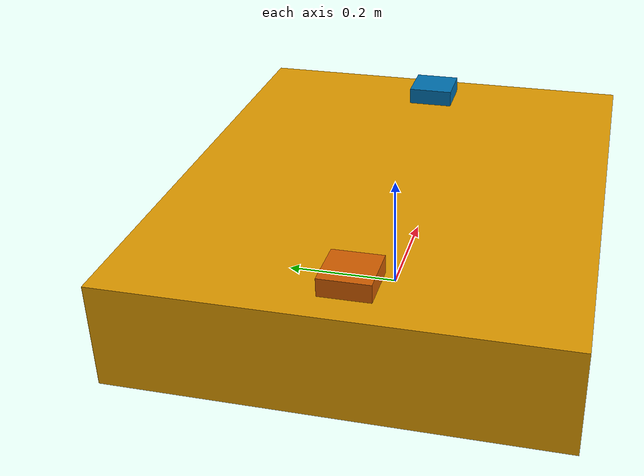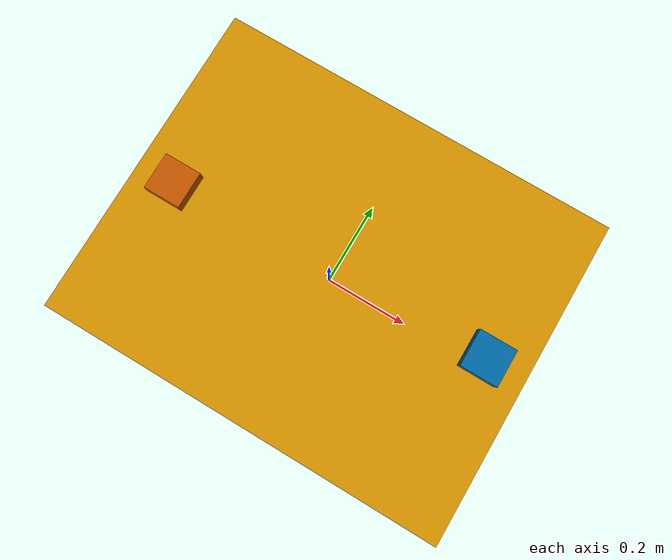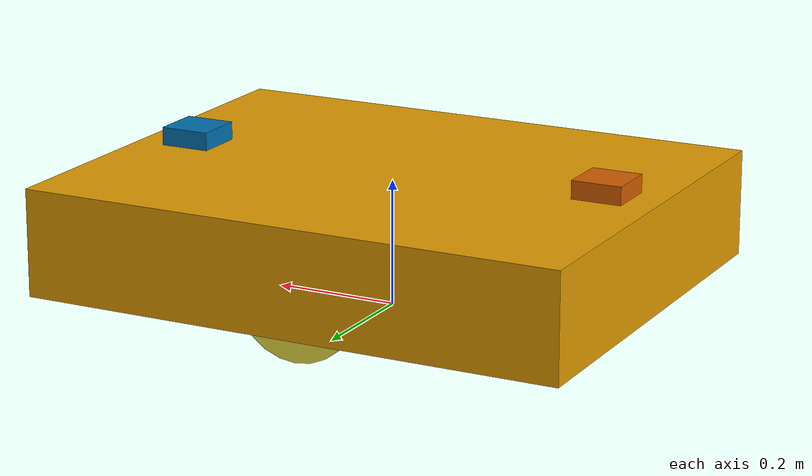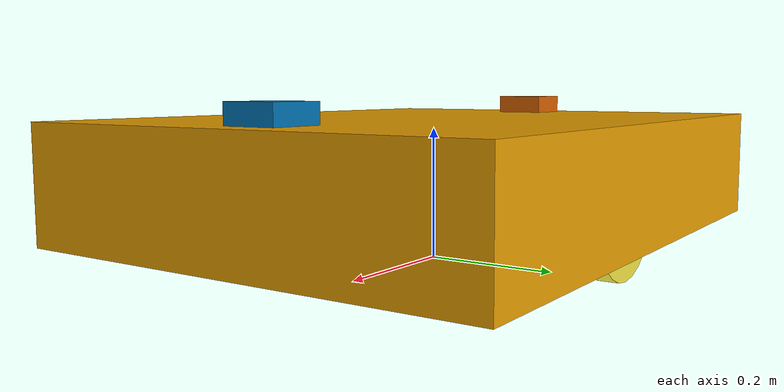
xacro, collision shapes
<?xml version="1.0" ?>
<robot name="midi" xmlns:xacro="http://ros.org/wiki/xacro">
  <xacro:include filename="$(find midi_description)/ros2_control/midi_hardware_interface.xacro"/>

<!-- AGV Base -->

<xacro:midi_ros2_control
    name="MidiSystemHardware" prefix="" use_mock_hardware="false" />

<link name="base_link">
    <visual>
      <origin xyz="0 0 0.100" rpy="0 0 1.5758"/>
      <geometry>
        <mesh filename="package://midi_description/mesh/agv_base_conveyor.stl" scale="0.001 0.001 0.001"/>
      </geometry>
    </visual>

    <collision>
      <origin xyz="0 0 0.132501" rpy="0 0 0"/>
      <geometry>
        <box size="0.877615 0.701947 0.17"/>
      </geometry>
    </collision>

    <inertial>
      <origin xyz="0 0 0.1562185" rpy="0 0 0"/>
      <mass value="61"/>
      <inertia ixx="2.745" ixy="0" ixz="0"
               iyy="4.1556" iyz="0"
               izz="6.42" />
    </inertial>
  </link>

<link name="imu_link"/>

  <joint name="imu_joint" type="fixed">
    <parent link="base_link"/>
    <child link="imu_link" />
    <origin xyz="0 0 0" rpy="0 0 0"/>
  </joint>

<!-- Wheels -->

  <!-- Main -->
    <joint name="right_wheel_joint" type="continuous">
    <parent link="base_link"/>
    <child link="right_wheel_link"/>
    <origin xyz="0 -0.296 0.1" rpy="-1.570796 0 0"/>
    <axis xyz="0 0 1"/>
    <dynamics damping="1" friction="0"/>
    <limit effort="2" velocity="1.0"/>
    </joint>

<link name="right_wheel_link">
    <visual>
      <origin xyz="0 0 0" rpy="0 0 0"/>
      <geometry>
        <cylinder length="0.03" radius="0.1"/>
      </geometry>
    </visual>

    <collision>
      <origin xyz="0 0 0" rpy="0 0 0"/>
      <geometry>
        <cylinder length="0.03" radius="0.1"/>
      </geometry>
    </collision>

    <inertial>
      <origin xyz="0 0 0" rpy="0 0 0"/>
      <mass value="1"/>
      <inertia ixx="0.0025750" ixy="0" ixz="0"
               iyy="0.0025750" iyz="0"
               izz="0.0050000" />
    </inertial>
  </link>

    <joint name="left_wheel_joint" type="continuous">
    <parent link="base_link"/>
    <child link="left_wheel_link"/>
    <origin xyz="0 0.296 0.1" rpy="-1.570796 0 0"/>
    <axis xyz="0 0 1"/>
    <dynamics damping="1" friction="0"/>
    <limit effort="2" velocity="1.0"/>
    </joint>

<link name="left_wheel_link">
    <visual>
      <origin xyz="0 0 0" rpy="0 0 0"/>
      <geometry>
        <cylinder length="0.03" radius="0.1"/>
      </geometry>
    </visual>

    <collision>
      <origin xyz="0 0 0" rpy="0 0 0"/>
      <geometry>
        <cylinder length="0.03" radius="0.1"/>
      </geometry>
    </collision>

    <inertial>
      <origin xyz="0 0 0" rpy="0 0 0"/>
      <mass value="1"/>
      <inertia ixx="0.0025750" ixy="0" ixz="0"
               iyy="0.0025750" iyz="0"
               izz="0.0050000" />
    </inertial>
  </link>

<!-- Scanner -->

<joint name="scan_joint" type="fixed">
    <parent link="base_link"/>
    <child link="base_scan"/>
    <origin xyz="0.35 0 0.2232185" rpy="0 0 0"/>
  </joint>

  <link name="base_scan">
    <visual>
      <origin xyz="0 0 -0.067" rpy="0 0 0"/>
      <geometry>
        <mesh filename="package://midi_description/mesh/hokuyo_coarse.stl" scale="0.001 0.001 0.001"/>
      </geometry>
    </visual>

    <collision>
      <origin xyz="0 0 -0.01675" rpy="0 0 0"/>
      <geometry>
        <box size="0.080 0.080 0.080"/>
      </geometry>
    </collision>

    <inertial>
      <mass value="0.114" />
      <origin xyz="0 0 0" />
      <inertia ixx="0.001" ixy="0.0" ixz="0.0"
               iyy="0.001" iyz="0.0"
               izz="0.001" />
    </inertial>
  </link>

<joint name="scan_joint_rear" type="fixed">
    <parent link="base_link"/>
    <child link="base_scan_rear"/>
    <origin xyz="-0.35 -0.015 0.2232185" rpy="0 0 3.1415"/>
  </joint>

  <link name="base_scan_rear">
    <visual>
      <origin xyz="0 0 -0.067" rpy="0 0 0"/>
      <geometry>
        <mesh filename="package://midi_description/mesh/hokuyo_coarse.stl" scale="0.001 0.001 0.001"/>
      </geometry>
    </visual>

    <collision>
      <origin xyz="0 0 -0.01675" rpy="0 0 0"/>
      <geometry>
        <box size="0.080 0.080 0.080"/>
      </geometry>
    </collision>

    <inertial>
      <mass value="0.114" />
      <origin xyz="0 0 0" />
      <inertia ixx="0.001" ixy="0.0" ixz="0.0"
               iyy="0.001" iyz="0.0"
               izz="0.001" />
    </inertial>
  </link>

</robot>
